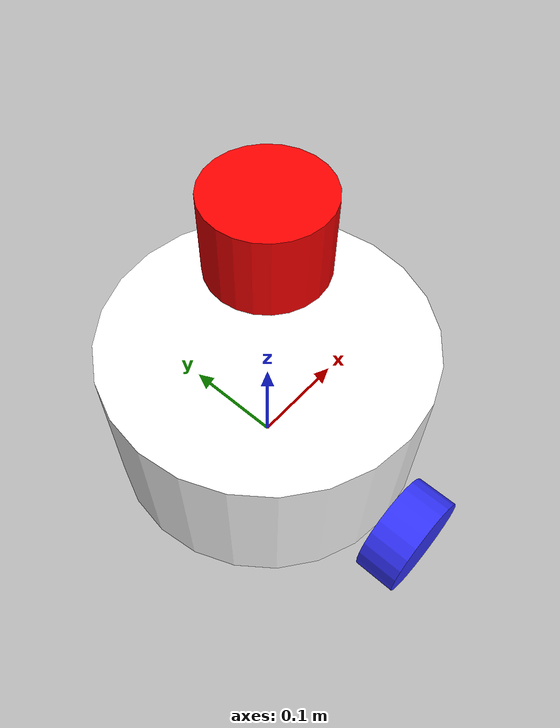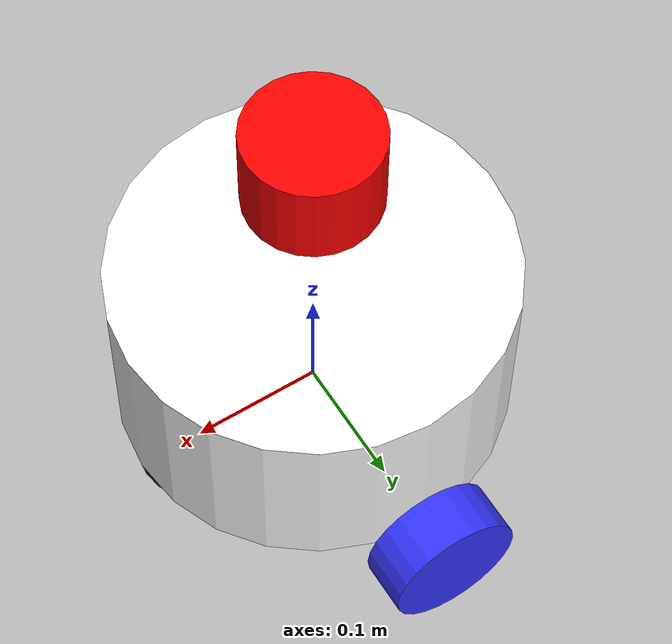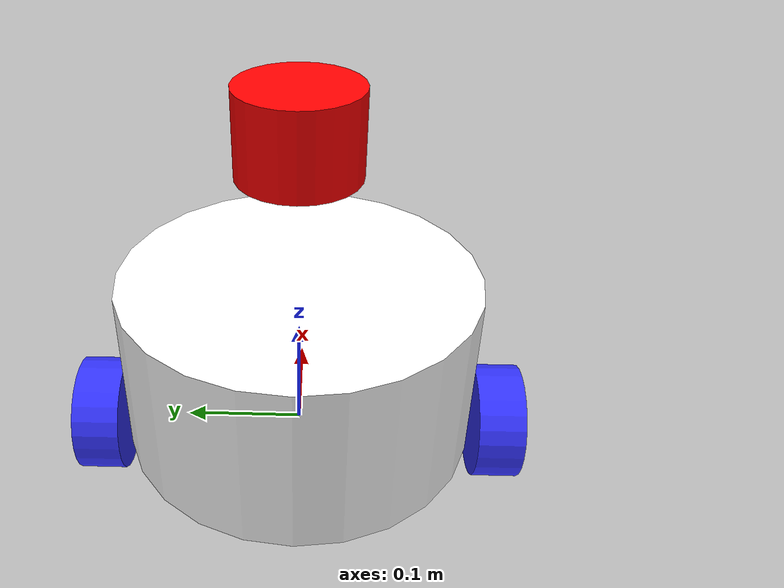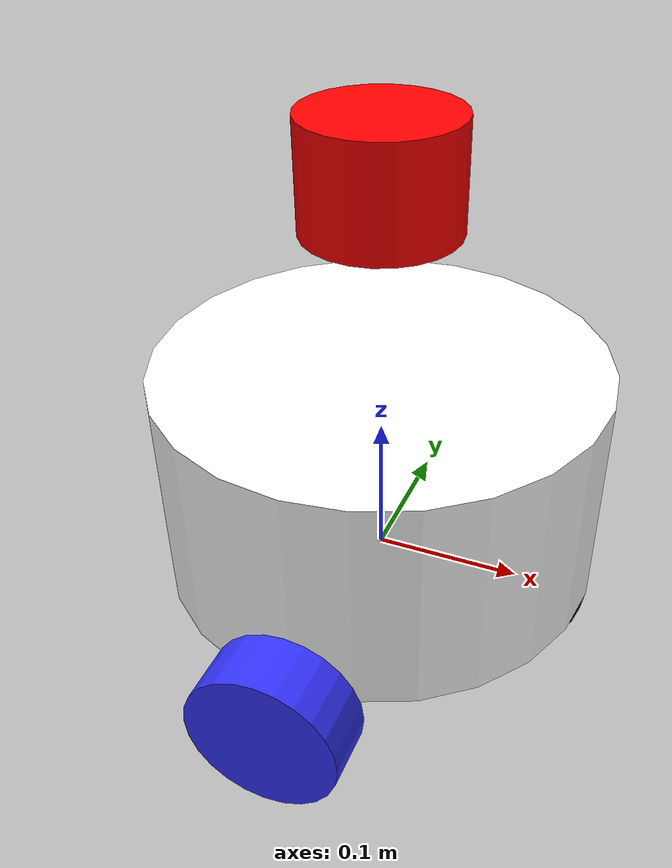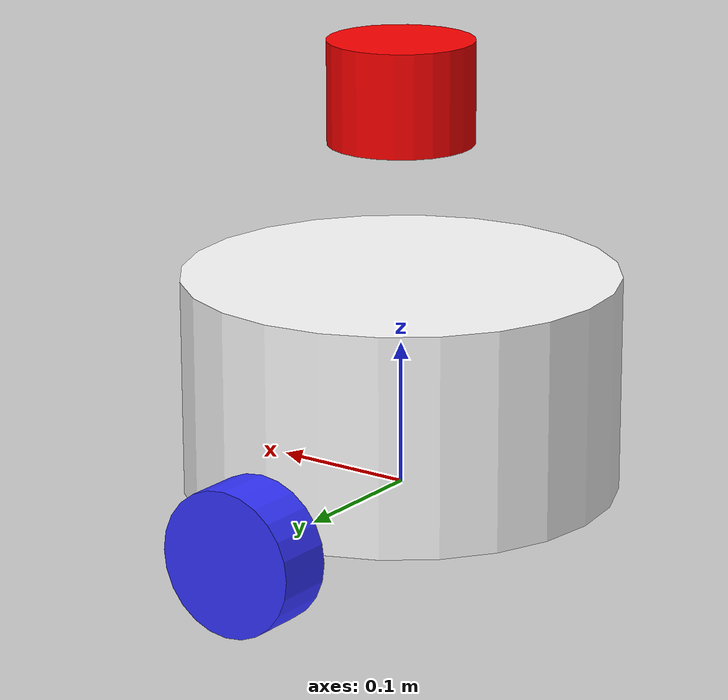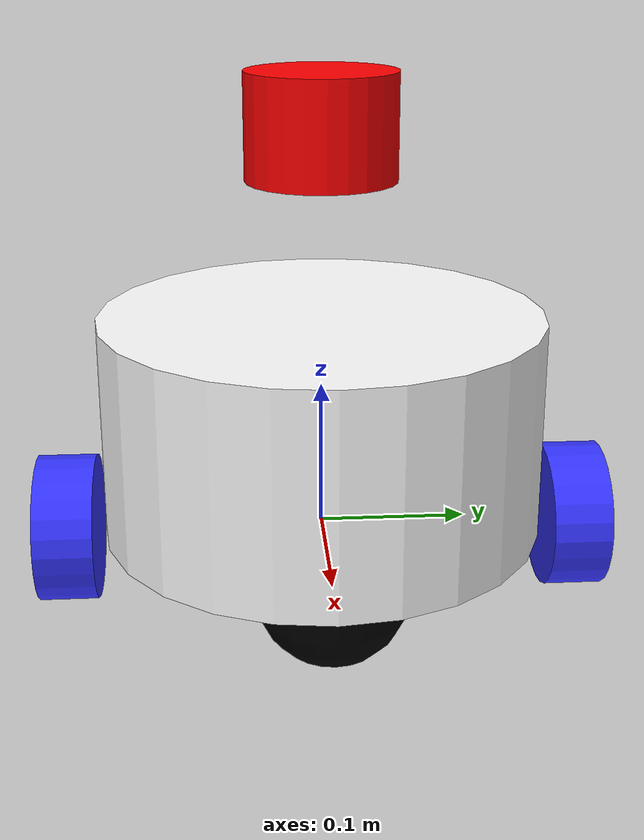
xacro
<?xml version="1.0"?>
<robot xmlns:xacro="http://www.ros.org/wiki/xacro">

  <xacro:property name="pi_const" value="3.141592653589793"/>

  <material name="white"><color rgba="1 1 1 1"/></material>
  <material name="blue"><color rgba="0.2 0.2 1 1"/></material>
  <material name="black"><color rgba="0 0 0 1"/></material>
  <material name="red"><color rgba="1 0 0 1"/></material>

  <!-- BASE LINK -->
  <link name="base_link">
    <inertial>
      <origin xyz="0.05 0 0.02" rpy="0 0 0"/>
      <mass value="5.0"/>
      <inertia ixx="0.1" ixy="0.0" ixz="0.0" iyy="0.1" iyz="0.0" izz="0.1"/>
    </inertial>
  </link>

  <!-- CHASSIS (child of base_link) -->
  <joint name="chassis_joint" type="fixed">
    <parent link="base_link"/>
    <child link="chassis"/>
    <origin xyz="0 0 0.075"/>
  </joint>

  <link name="chassis">
    <visual>
      <origin xyz="0 0 0" rpy="0 0 0"/>
      <geometry>
        <cylinder length="0.15" radius="0.15"/>
      </geometry>
      <material name="white"/>
    </visual>
    <collision>
      <origin xyz="0 0 0" rpy="0 0 0"/>
      <geometry>
        <cylinder length="0.15" radius="0.15"/>
      </geometry>
    </collision>
    <xacro:inertial_cylinder mass="0.5" length="0.15" radius="0.15">
      <origin xyz="0 0 0" rpy="0 0 0"/>
    </xacro:inertial_cylinder>
  </link>

  <!-- LEFT WHEEL (child of chassis, offset down to touch ground) -->
  <joint name="left_wheel_joint" type="continuous">
    <parent link="chassis"/>
    <child link="left_wheel"/>
    <origin xyz="0 0.175 -0.075" rpy="-${pi_const/2} 0 0"/>
    <axis xyz="0 0 1"/>
  </joint>

  <link name="left_wheel">
    <visual>
      <origin xyz="0 0 0" rpy="0 0 0"/>
      <geometry>
        <cylinder length="0.04" radius="0.05"/>
      </geometry>
      <material name="blue"/>
    </visual>
    <collision>
      <origin xyz="0 0 0" rpy="0 0 0"/>
      <geometry>
        <cylinder length="0.04" radius="0.05"/>
      </geometry>
    </collision>
    <xacro:inertial_cylinder mass="0.1" length="0.04" radius="0.05">
      <origin xyz="0 0 0" rpy="0 0 0"/>
    </xacro:inertial_cylinder>
  </link>

  <!-- RIGHT WHEEL (child of chassis, offset down to touch ground) -->
  <joint name="right_wheel_joint" type="continuous">
    <parent link="chassis"/>
    <child link="right_wheel"/>
    <origin xyz="0 -0.175 -0.075" rpy="${pi_const/2} 0 0"/>
    <axis xyz="0 0 -1"/>
  </joint>

  <link name="right_wheel">
    <visual>
      <origin xyz="0 0 0" rpy="0 0 0"/>
      <geometry>
        <cylinder length="0.04" radius="0.05"/>
      </geometry>
      <material name="blue"/>
    </visual>
    <collision>
      <origin xyz="0 0 0" rpy="0 0 0"/>
      <geometry>
        <cylinder length="0.04" radius="0.05"/>
      </geometry>
    </collision>
    <xacro:inertial_cylinder mass="0.1" length="0.04" radius="0.05">
      <origin xyz="0 0 0" rpy="0 0 0"/>
    </xacro:inertial_cylinder>
  </link>

  <!-- CASTER WHEEL (child of chassis, offset down to touch ground) -->
  <joint name="caster_wheel_joint" type="fixed">
    <parent link="chassis"/>
    <child link="caster_wheel"/>
    <origin xyz="0.1 0 -0.075" rpy="0 0 0"/>
  </joint>

  <link name="caster_wheel">
    <visual>
      <origin xyz="0 0 0" rpy="0 0 0"/>
      <geometry>
        <sphere radius="0.05"/>
      </geometry>
      <material name="black"/>
    </visual>
    <collision>
      <origin xyz="0 0 0" rpy="0 0 0"/>
      <geometry>
        <sphere radius="0.05"/>
      </geometry>
    </collision>
    <xacro:inertial_sphere mass="0.1" radius="0.05">
      <origin xyz="0 0 0" rpy="0 0 0"/>
    </xacro:inertial_sphere>
  </link>

  <!-- LIDAR (direct child of base_link) -->
  <joint name="lidar_joint" type="fixed">
    <parent link="base_link"/>
    <child link="lidar_link"/>
    <origin xyz="0 0 0.275" rpy="0 0 0"/>
  </joint>

  <link name="lidar_link">
    <inertial>
      <mass value="0.1"/>
      <inertia ixx="0.001" ixy="0.0" ixz="0.0" iyy="0.001" iyz="0.0" izz="0.001"/>
    </inertial>
    <visual>
      <origin xyz="0 0 0" rpy="0 0 0"/>
      <geometry>
        <cylinder radius="0.05" length="0.07"/>
      </geometry>
      <material name="red"/>
    </visual>
    <collision>
      <origin xyz="0 0 0" rpy="0 0 0"/>
      <geometry>
        <cylinder radius="0.05" length="0.07"/>
      </geometry>
    </collision>
  </link>

  <!-- IMU (direct child of base_link) -->
  <joint name="imu_joint" type="fixed">
    <parent link="base_link"/>
    <child link="imu_link"/>
    <origin xyz="0 0 0"/>
  </joint>

  <link name="imu_link">
    <inertial>
      <mass value="0.01"/>
      <inertia ixx="0.00001" ixy="0.0" ixz="0.0" iyy="0.00001" iyz="0.0" izz="0.00001"/>
    </inertial>
    <visual>
      <origin xyz="0 0 0" rpy="0 0 0"/>
      <geometry>
        <box size="0.02 0.02 0.02"/>
      </geometry>
      <material name="black"/>
    </visual>
    <collision>
      <origin xyz="0 0 0" rpy="0 0 0"/>
      <geometry>
        <box size="0.02 0.02 0.02"/>
      </geometry>
    </collision>
  </link>

  <!-- Gazebo materials -->
  <gazebo reference="chassis"><material>Gazebo/White</material></gazebo>
  <gazebo reference="left_wheel"><material>Gazebo/Blue</material><mu1>1.0</mu1><mu2>1.0</mu2></gazebo>
  <gazebo reference="right_wheel"><material>Gazebo/Blue</material><mu1>1.0</mu1><mu2>1.0</mu2></gazebo>
  <gazebo reference="caster_wheel"><material>Gazebo/Black</material><mu1>0.01</mu1><mu2>0.01</mu2></gazebo>
  <gazebo reference="lidar_link"><material>Gazebo/Red</material></gazebo>

</robot>
